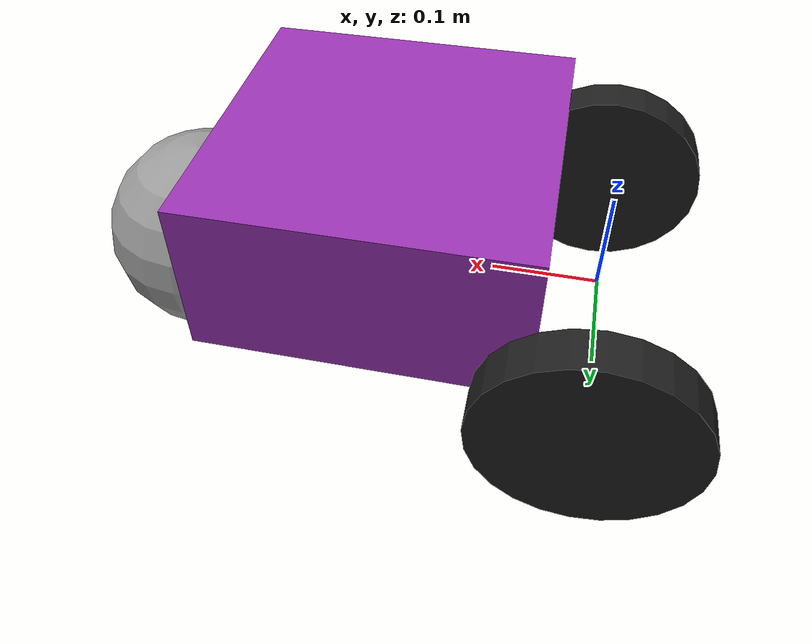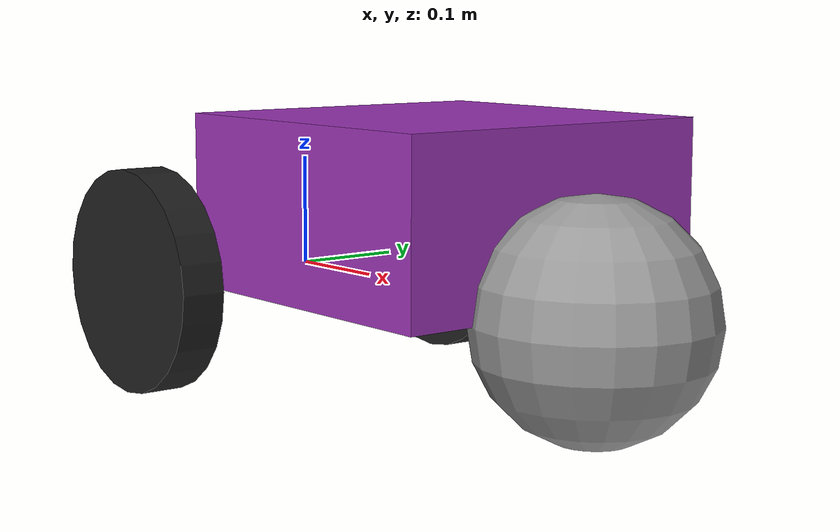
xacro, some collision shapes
<?xml version="1.0"?>
<robot xmlns:xacro="http://www.ros.org/wiki/xacro" >
    <!--includes-->
    <xacro:include filename="inertial_macros.xacro"/>
    <xacro:include filename="materials.xacro"/>

    <xacro:property name="wheel_radius" value="0.1" />

    <!-- BASE LINK -->
    <link name="base_link">

    </link>

     <!-- BASE FOOTPRINT LINK -->
    <joint name="base_footprint_joint" type="fixed">
        <parent link="base_link"/>
        <child link="base_footprint"/>
        <origin xyz="0 0 -0.05" rpy="0 0 0"/>
    </joint>

    <link name="base_footprint">

    </link>

    <!-- CHASSIS LINK -->
    <joint name="chassis_joint" type="fixed">
        <parent link="base_link"/>
        <child link="chassis"/>
        <origin xyz="-0.1 0 0"/>
    </joint>

    <link name="chassis">
        <visual>
            <origin xyz="0.30 0 0" rpy="0 0 ${pi/2}"/>
            <geometry>
                <mesh filename="file://$(find pathfinder)/description/meshes/pathfinder_chassis.stl" scale="0.001 0.002 0.001"/> <!-- scale is in meters -->
            </geometry>
            <material name="fontys_purple"/>
        </visual>
        <collision>
            <origin xyz="0.30 0 0.075"/>
            <geometry>
                <box size="0.3 0.3 0.15"/>
            </geometry>
        </collision>
        <xacro:inertial_box mass="0.5" x="0.3" y="0.3" z="0.15">
            <origin xyz="0.15 0 0.075" rpy="0 0 0"/>
        </xacro:inertial_box>
    </link>

    <gazebo reference="chassis">
        <material>Gazebo/Purple</material>
    </gazebo>

    <!-- LEFT WHEEL LINK -->
    <joint name="left_wheel_joint" type="continuous">
        <parent link="base_link"/>
        <child link="left_wheel"/>
        <origin xyz="0 0.175 0" rpy="-${pi/2} 0 0" />
        <axis xyz="0 0 1"/>
    </joint>

    <link name="left_wheel">
        <visual>
            <geometry>
                <cylinder radius="${wheel_radius}" length="0.04"/>
            </geometry>
            <material name="black"/>
        </visual>
        <collision>
            <geometry>
                <cylinder radius="${wheel_radius}" length="0.04"/>
            </geometry>
        </collision>
        <xacro:inertial_cylinder mass="0.1" length="0.04" radius="${wheel_radius}">
            <origin xyz="0 0 0" rpy="0 0 0"/>
        </xacro:inertial_cylinder>
    </link>

    <gazebo reference="left_wheel">
        <material>Gazebo/Black</material>
    </gazebo>

    <!-- RIGHT WHEEL LINK -->
    <joint name="right_wheel_joint" type="continuous">
        <parent link="base_link"/>
        <child link="right_wheel"/>
        <origin xyz="0 -0.175 0" rpy="${pi/2} 0 0" />
        <axis xyz="0 0 -1"/>
    </joint>

    <link name="right_wheel">
        <visual>
            <geometry>
                <cylinder radius="${wheel_radius}" length="0.04"/>
            </geometry>
            <material name="black"/>
        </visual>
        <collision>
            <geometry>
                <cylinder radius="${wheel_radius}" length="0.04"/>
            </geometry>
        </collision>
        <xacro:inertial_cylinder mass="0.1" length="0.04" radius="${wheel_radius}">
            <origin xyz="0 0 0" rpy="0 0 0"/>
        </xacro:inertial_cylinder>
    </link>

    <gazebo reference="right_wheel">
        <material>Gazebo/Black</material>
    </gazebo>

    <!-- CASTER WHEEL LINK -->
    <joint name="caster_wheel_joint" type="fixed">
        <parent link="chassis"/>
        <child link="caster_wheel"/>
        <origin xyz="0.49 0 0"/>
    </joint>

    <link name="caster_wheel">
        <visual>
            <geometry>
                <sphere radius="${wheel_radius}"/>
            </geometry>
            <material name="grey"/>
        </visual>
        <collision>
            <geometry>
                <sphere radius="${wheel_radius}"/>
            </geometry>
        </collision>
        <xacro:inertial_sphere mass="0.1" radius="${wheel_radius}">
            <origin xyz="0.25 0 0" rpy="0 0 0"/>
        </xacro:inertial_sphere>
    </link>

    <gazebo reference="caster_wheel">
        <material>Gazebo/Grey</material>
        <mu1 value="0.001"/> <!-- friction -->
        <mu2 value="0.001"/>
    </gazebo>

</robot>
